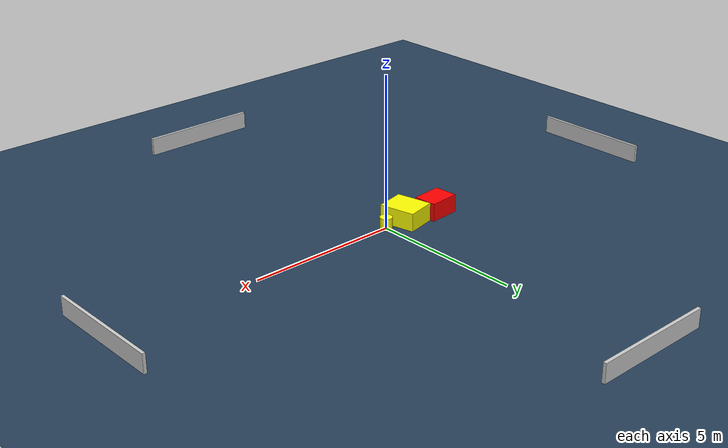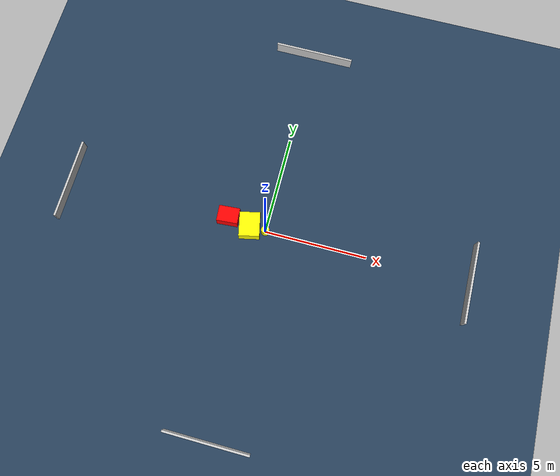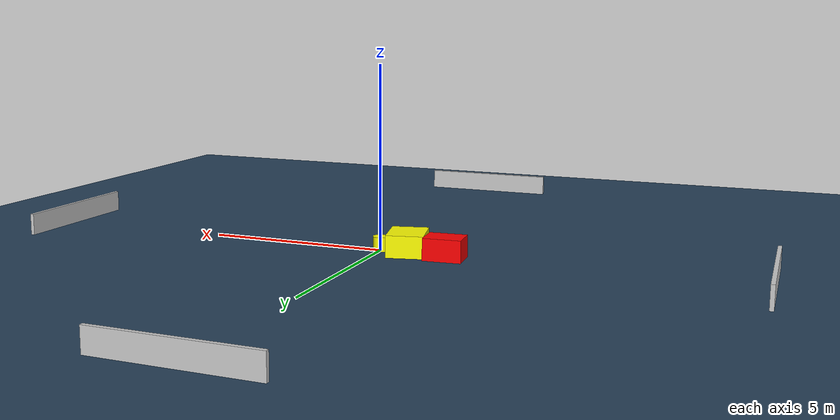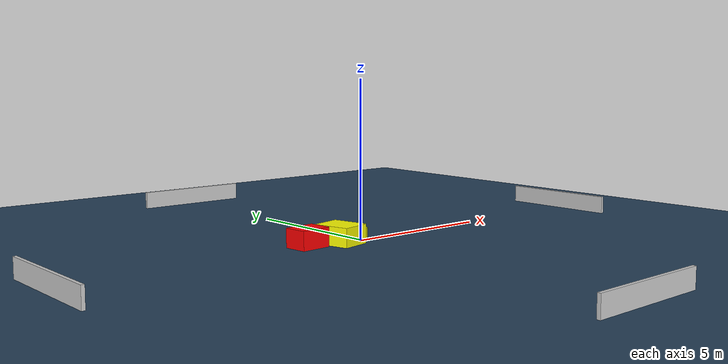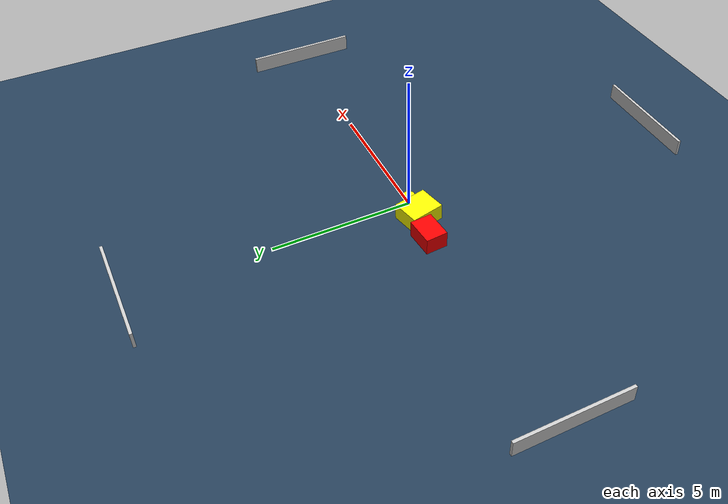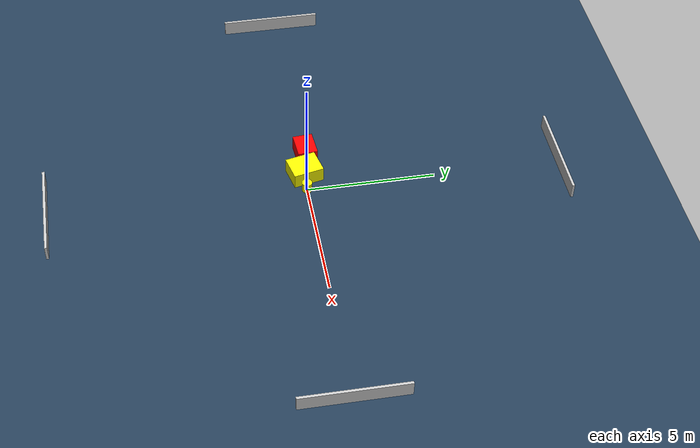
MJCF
<?xml version="1.0" ?>
<mujoco model="generated_environment">
  <option timestep="0.01" integrator="RK4" cone="elliptic"/>
  <default>
    <geom density="1"/>
  </default>
  <asset>
    <texture builtin="gradient" height="3072" name="skybox" rgb1="0.3 0.5 0.7" rgb2="0 0 0" type="skybox" width="512"/>
    <texture builtin="checker" height="300" name="groundplane" rgb1="0.2 0.3 0.4" rgb2="0.1 0.2 0.3" type="2d" width="300"/>
    <material name="groundplane" reflectance="0.2" texrepeat="5 5" texture="groundplane"/>
  </asset>
  <worldbody>
    <light dir="0 0 -1" directional="true" pos="0 0 1.5"/>
    <geom condim="3" friction="0.5 0.005 0.001" material="groundplane" name="floor" pos="0 0 0" size="0 0 0.05" type="plane"/>
    <body name="walls">
      <geom name="wall_1" condim="4" pos="-10.0 0.0 0.3" rgba="0.800000011920929 0.800000011920929 0.800000011920929 1.0" size="0.05 2.0 0.3" type="box"/>
      <geom name="wall_2" condim="4" pos="10.0 0.0 0.3" rgba="0.800000011920929 0.800000011920929 0.800000011920929 1.0" size="0.05 2.0 0.3" type="box"/>
      <geom name="wall_3" condim="4" pos="0.0 -10.0 0.3" rgba="0.800000011920929 0.800000011920929 0.800000011920929 1.0" size="2.0 0.05 0.3" type="box"/>
      <geom name="wall_4" condim="4" pos="0.0 10.0 0.3" rgba="0.800000011920929 0.800000011920929 0.800000011920929 1.0" size="2.0 0.05 0.3" type="box"/>
    </body>
    <body name="robot">
      <joint name="joint_x" type="slide" pos="0 0 0" axis="1 0 0"/>
      <joint name="joint_y" type="slide" pos="0 0 0" axis="0 1 0"/>
      <geom name="robot" type="cylinder" pos="0.0 0.0 0.2" size="0.2 0.2 0.0" mass="5.0" friction="1.0 0.005 0.0001" condim="4" rgba="1.0 1.0 0.0 1.0"/>
    </body>
    <body name="obstacle_1_movable">
      <geom name="obstacle_1_movable" condim="4" pos="-0.7971508323055763 0.029904802731030442 0.3" euler="0 0 282.56481432160876" friction="0.0 0.005 0.001" rgba="1.0 1.0 0.0 1.0" size="0.6000180681892199 0.500072717816554 0.3" type="box" mass="0.1"/>
      <joint type="free"/>
    </body>
    <body name="obstacle_2_static">
      <geom name="obstacle_2_static" condim="4" pos="-1.9151746624042645 0.22974451462267367 0.3" euler="0 0 274.3336101373041" friction="0.0 0.005 0.001" rgba="1.0 0.0 0.0 1.0" size="0.3878204310639156 0.5127574474388599 0.3" type="box"/>
    </body>
  </worldbody>
  <actuator>
    <motor name="actuator_x" joint="joint_x" gear="1" ctrlrange="-1 1"/>
    <motor name="actuator_y" joint="joint_y" gear="1" ctrlrange="-1 1"/>
  </actuator>
</mujoco>
